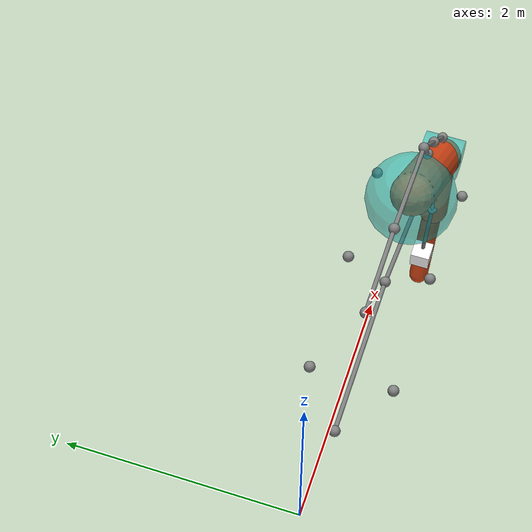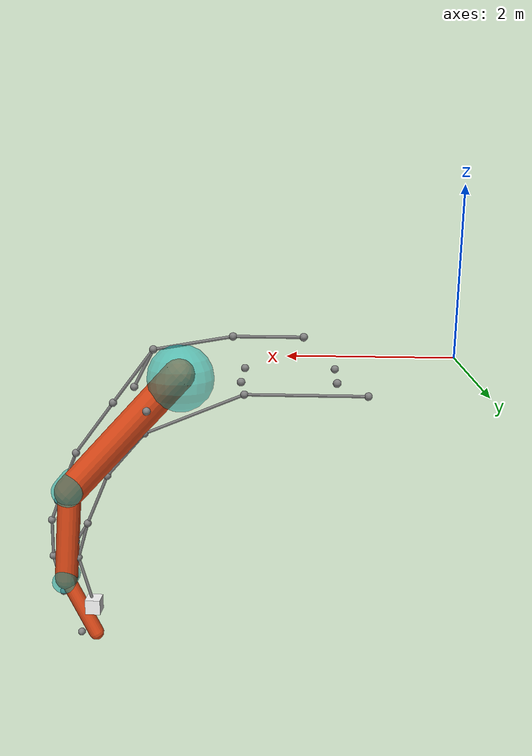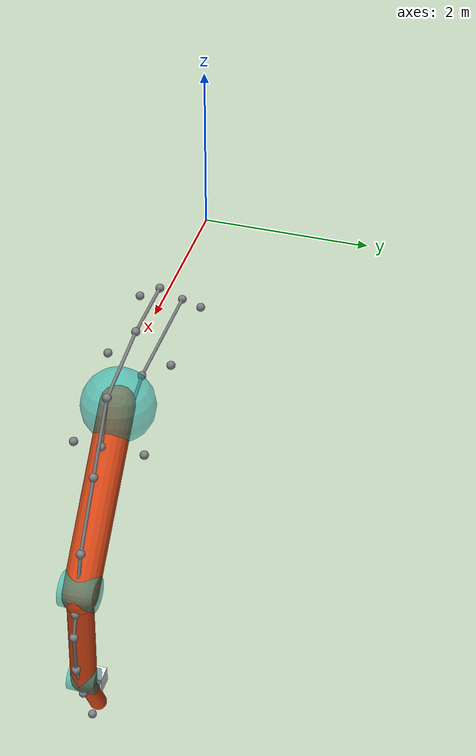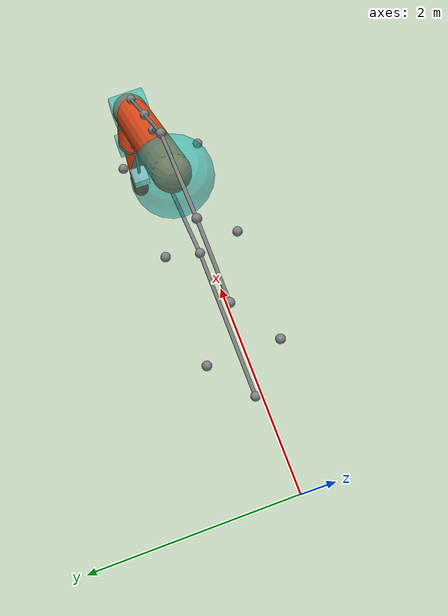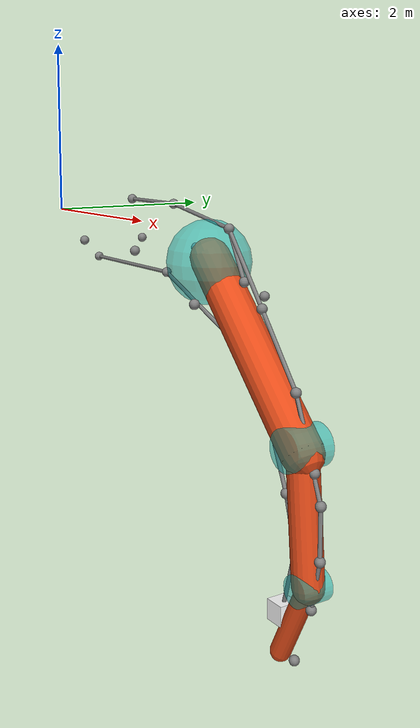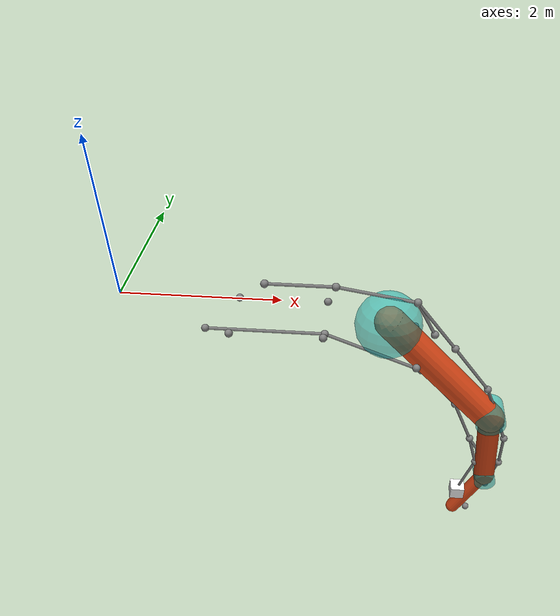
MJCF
<mujoco model="Tendon Finger">
	<compiler coordinate="local"/>
    <option timestep="0.01" gravity="0 0 0" iterations="20" integrator="Euler" />
	<visual>
		<headlight diffuse=".7 .7 .7"/>
	</visual>

	<default>
		<geom  density="1" contype="0" conaffinity="0" rgba=".9 .3 .1 1" group="1"/>
		<joint limited="true"/>
		<site type="sphere" size="0.05"/>
		<tendon width="0.02"/>
	</default>

	<worldbody>
		<site name="S_M1" pos="3.6278 0 0.0624"/>
		<site name="S_M2" pos="2.6510 0 0.2332" group="2"/>
		<site name="S_M3" pos="2.5300 0.3544 -0.2488" group="2"/>
		<site name="S_M4" pos="2.5150 0 -0.4878" group="2"/>
		<site name="S_M5" pos="2.5300 -0.3880 -0.2358" group="2"/>

		<site name="S_M2a" pos="1.8 0 0.2332" group="2"/>
		<site name="S_M3a" pos="1.4 0.3544 -0.2488" group="2"/>
		<site name="S_M4a" pos="1   0 -0.4878" group="2"/>
		<site name="S_M5a" pos="1.4 -0.3880 -0.2358" group="2"/>

		<geom name="MCP_wrap"  type="sphere" pos="3.3 0 -0.29" size="0.42" rgba="0 .7 .7 .5"/>

		<body name="Proximate">
			<joint type="hinge" pos="3.3191 0 -0.2488" axis="0 1 0" ref="44.6037" range="-90 90"/>

			<geom type="capsule" fromto="3.3191 0 -0.2488  4.7652 0 -1.8094" size="0.2"/>

			<site name="S_P1" pos="4.6557 0 -1.2831"/>
			<site name="S_P2" pos="4.1532 0 -0.6197"/>
			<site name="S_P3" pos="3.7676 0 -1.0104"/>
			<site name="S_P4" pos="4.2662 0 -1.5837"/>
			<site name="I_M1" pos="3.8785 0 -0.4110"/>
			<site name="I_M2" pos="3.6599 0.4059 -0.6146"/>
			<site name="I_M3" pos="3.6599 -0.4059 -0.6146"/>

			<geom name="PIP_wrap"  type="cylinder" pos="4.75 0 -1.75" zaxis="0 1 0" size="0.2 0.2" rgba="0 .7 .7 .5"/>
			<site name="PIP_wrapside" pos="4.85 0 -1.75" group="1"/>

			<body name="Intermediate">
				<joint type="hinge" pos="4.7652 0 -1.8094" axis="0 1 0" ref="34.8844" range="-90 90"/>

				<geom type="capsule" fromto="4.7652 0 -1.8094  4.8664 0.0148 -3.0144" size="0.15"/>

				<site name="S_D1" pos="5.0280 0 -2.7065"/>
				<site name="S_D2" pos="5.0189 0 -2.2020"/>
				<site name="S_D3" pos="4.5500 0 -2.2390"/>
				<site name="S_D4" pos="4.6940 0 -2.7254"/>
				<site name="I_P1" pos="4.9260 0 -1.9327"/>
				<site name="I_P2" pos="4.7143 0 -2.4997"/>

				<body name="Distal">
					<joint type="hinge" pos="4.8664 0.0148 -3.0144" axis="0 1 0" ref="24.6697" range="-90 90"/>

					<geom name="DIP_wrap"  type="cylinder" pos="4.8664 0.0148 -3.0144"
						zaxis="0 1 0" size="0.15 0.16" rgba="0 .7 .7 .5"/>
					<site name="DIP_wrapside" pos="4.95 0.0148 -3.0144" group="1"/>

					<geom type="capsule" fromto="4.8664 0.0148 -3.0144  4.5 0.0148 -3.8" size="0.1"/>

					<site name="I_D1" pos="4.9130 0.0148 -3.2080"/>
					<site name="I_D2" pos="4.5144 0.0148 -3.3888"/>
                    <site name="tip_position" pos="4.7 0.0148 -3.8"/>
				</body>
			</body>
		</body>

        <body name="goal" pos="4.5144 0.0148 -3.3888">
            <geom rgba="1 1 1 1" type="box" size="0.1 0.1 0.1" density='0.00001' contype="0" conaffinity="0"/>
            <site name="goal pos" pos="0 0 0" size="0.01" />
        </body>
	</worldbody>

	<tendon>
		<spatial name="flexorShort">
			<site site="S_M4"/>
			<site site="S_P3"/>
			<site site="S_P4"/>
			<site site="S_D3"/>
			<site site="I_P2"/>
		</spatial>

		<spatial name="extensor">
			<pulley divisor="2"/>
			<site site="S_M2"/>
			<site site="S_M1"/>
			<site site="S_P2"/>
			<site site="S_P1"/>
			<geom geom="PIP_wrap" sidesite="PIP_wrapside"/>
			<site site="I_P1"/>

			<pulley divisor="2"/>
			<site site="S_M2"/>
			<site site="S_M1"/>
			<site site="S_P2"/>
			<site site="S_P1"/>
			<geom geom="PIP_wrap" sidesite="PIP_wrapside"/>
			<site site="S_D2"/>
			<site site="S_D1"/>
			<geom geom="DIP_wrap" sidesite="DIP_wrapside"/>
			<site site="I_D1"/>
		</spatial>

		<spatial name="extensorNew" limited="true" range="0 5">
			<site site="S_M2a"/>
			<site site="S_M2"/>
			<site site="S_M1"/>
			<site site="I_M1"/>
		</spatial>

		<spatial name="flexorLong" limited="true" range="0 8">
			<site site="S_M4a"/>
			<site site="S_M4"/>
			<site site="S_P3"/>
			<site site="S_P4"/>
			<site site="S_D3"/>
			<site site="S_D4"/>
			<site site="I_D2"/>
		</spatial>
	</tendon>
	<actuator>
        <!--  ================= Torque actuators ================= /-->
        <motor tendon='flexorShort' name='flexorShort_actuator'/>
        <motor tendon='extensor' name='extensor_actuator'/>
        <motor tendon='extensorNew' name='extensorNew_actuator'/>
        <motor tendon='flexorLong' name='flexorLong_actuator'/>
    </actuator>
</mujoco>
